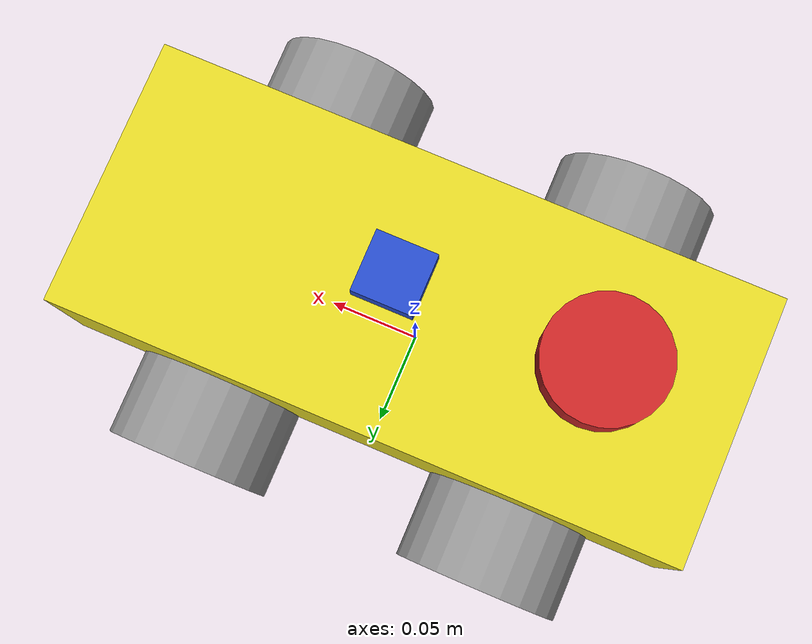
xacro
<?xml version="1.0"?>
<robot xmlns:xacro="http://www.ros.org/wiki/xacro">

    <xacro:property name="base_length" value="0.323" />
    <xacro:property name="base_width" value="0.137" />
    <xacro:property name="base_height" value="0.078" />

    <xacro:property name="wheel_radius" value="0.0435" />
    <xacro:property name="wheel_length" value="0.045" />

    <xacro:property name="wheel_effort_limit" value="10.0" />
    <xacro:property name="wheel_velocity_limit" value="10.0" />

    <!-- Sensor mounting height: 19 cm from base frame -->
    <xacro:property name="sensor_height" value="${base_height + 0.04}" />

    <link name="base_footprint"/>

    <link name="base_link">
        <visual>
            <geometry>
                <box size="${base_length} ${base_width} ${base_height}" />
            </geometry>
            <origin xyz="0 0 ${base_height / 2.0}" rpy="0 0 0" />
            <material name="yellow"/>
        </visual>

        <collision>
            <geometry>
                <box size="${base_length} ${base_width} ${base_height}" />
            </geometry>
            <origin xyz="0 0 ${base_height / 2.0}" rpy="0 0 0" />
        </collision>

        <inertial>
            <mass value="5.0"/>
            <inertia ixx="0.1" ixy="0" ixz="0"
                     iyy="0.1" iyz="0"
                     izz="0.1"/>
        </inertial>
    </link>

    <joint name="base_joint" type="fixed">
        <parent link="base_footprint"/>
        <child link="base_link"/>
        <origin xyz="0 0 ${wheel_radius}" rpy="0 0 0"/>
    </joint>

    <xacro:macro name="wheel_link" params="prefix">
        <link name="${prefix}_wheel_link">
            <visual>
                <geometry>
                    <cylinder radius="${wheel_radius}" length="${wheel_length}" />
                </geometry>
                <origin xyz="0 0 0" rpy="${pi/2} 0 0"/>
                <material name="grey"/>
            </visual>

            <collision>
                <geometry>
                    <cylinder radius="${wheel_radius}" length="${wheel_length}" />
                </geometry>
                <origin xyz="0 0 0" rpy="${pi/2} 0 0"/>
            </collision>

            <inertial>
                <mass value="1.0"/>
                <inertia ixx="0.01" ixy="0" ixz="0"
                         iyy="0.01" iyz="0"
                         izz="0.01"/>
            </inertial>
        </link>
    </xacro:macro>

    <!-- LiDAR -->
    <xacro:macro name="lidar_link" params="prefix">
        <link name="${prefix}_link">
            <visual>
                <geometry>
                    <cylinder radius="0.03" length="0.02"/>
                </geometry>
                <material name="red"/>
            </visual>

            <collision>
                <geometry>
                    <cylinder radius="0.03" length="0.02"/>
                </geometry>
            </collision>

            <inertial>
                <mass value="0.1"/>
                <inertia ixx="0.001" ixy="0" ixz="0"
                         iyy="0.001" iyz="0"
                         izz="0.001"/>
            </inertial>
        </link>
    </xacro:macro>

    <xacro:macro name="imu_link" params="prefix">
        <link name="${prefix}_link">
            <visual>
                <geometry>
                    <box size="0.03 0.03 0.01"/>
                </geometry>
                <material name="blue"/>
            </visual>

            <collision>
                <geometry>
                    <box size="0.03 0.03 0.01"/>
                </geometry>
            </collision>

            <inertial>
                <mass value="0.05"/>
                <inertia ixx="0.0005" ixy="0" ixz="0"
                         iyy="0.0005" iyz="0"
                         izz="0.0005"/>
            </inertial>
        </link>
    </xacro:macro>

    <xacro:wheel_link prefix="rear_right"/>
    <xacro:wheel_link prefix="rear_left"/>
    <xacro:wheel_link prefix="front_right"/>
    <xacro:wheel_link prefix="front_left"/>

    <xacro:lidar_link prefix="lidar"/>
    <xacro:imu_link prefix="imu"/>

    <joint name="base_rear_right_wheel_joint" type="fixed">
        <parent link="base_link"/>
        <child link="rear_right_wheel_link"/>
        <origin xyz="${-base_length/4} ${-(base_width + wheel_length)/2} 0"/>
    </joint>

    <joint name="base_rear_left_wheel_joint" type="fixed">
        <parent link="base_link"/>
        <child link="rear_left_wheel_link"/>
        <origin xyz="${-base_length/4} ${(base_width + wheel_length)/2} 0"/>
    </joint>

    <joint name="base_front_right_wheel_joint" type="fixed">
        <parent link="base_link"/>
        <child link="front_right_wheel_link"/>
        <origin xyz="${base_length/4} ${-(base_width + wheel_length)/2} 0"/>
    </joint>

    <joint name="base_front_left_wheel_joint" type="fixed">
        <parent link="base_link"/>
        <child link="front_left_wheel_link"/>
        <origin xyz="${base_length/4} ${(base_width + wheel_length)/2} 0"/>
    </joint>

    <joint name="lidar_joint" type="fixed">
        <parent link="base_link"/>
        <child link="lidar_link"/>
        <origin xyz="-0.09 0 ${sensor_height}" rpy="0 0 ${pi}"/>
    </joint>

    <joint name="imu_joint" type="fixed">
        <parent link="base_link"/>
        <child link="imu_link"/>
        <origin xyz="0.01 0 ${sensor_height}" rpy="0 0 0"/>
    </joint>

</robot>
